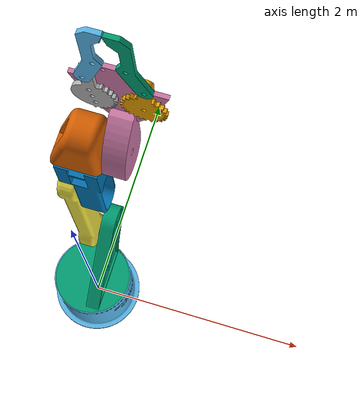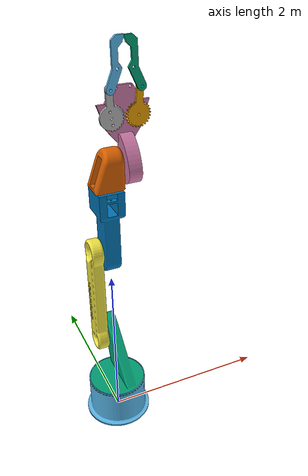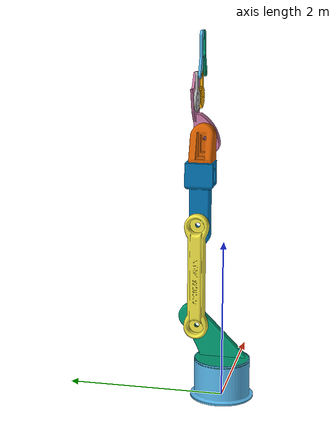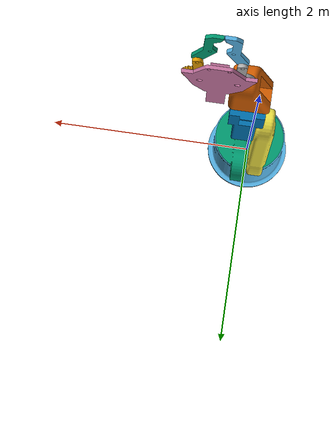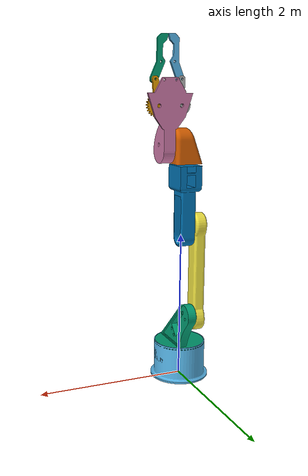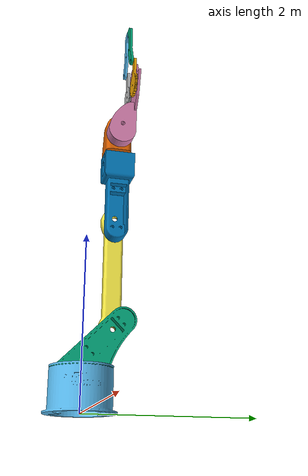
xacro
<?xml version="1.0"?>
<robot xmlns:xacro="http://www.ros.org/wiki/xacro" name="arm_robot" >

    <xacro:include filename="$(find robot_description)/urdf/gazebo_arm.xacro"/>
    <xacro:include filename="$(find robot_description)/urdf/arm_ros2_controll.xacro"/>

    <xacro:macro name="def_inertia" params="mass">
        <inertial>
            <mass value="${mass}"/>
            <inertia ixx="1.0" ixy="0.0" ixz="0.0"
                      iyy="1.0" iyz="0.0"
                      izz="1.0"/>
        </inertial>
    </xacro:macro>

    <xacro:macro name="def_transmission" params="number">
        <transmission name="transmission_${number}">
            <plugin>transmissio_interface/SimpleTransmission</plugin>
            <actuator name="motor_${number}" role="actuator1"/>
            <joint name="joint_${number}" role="joint1">
                <mechanical_reduction>1.0</mechanical_reduction>
            </joint>

        </transmission>
    </xacro:macro>

    <link name="world"/>

    <link name="base_link">
        <xacro:def_inertia mass="1.0"/>
        <visual>
            <origin xyz="0 0 0" rpy="1.5707 0 0"/>
            <geometry>
               <mesh filename="package://robot_description/meshes/Base.stl" scale="0.01 0.01 0.01"/>
            </geometry>
        </visual>
        <collision>
            <origin xyz="0 0 0" rpy="1.5707 0 0"/>
            <geometry>
               <mesh filename="package://robot_description/meshes/Base.stl" scale="0.01 0.01 0.01"/>
            </geometry>
        </collision>
    </link>

    <joint name="base_joint" type="fixed">
        <parent link="world"/>
        <child link="base_link"/>
        <origin xyz="0 0 0" rpy="0 0 0"/>
    </joint>

    <link name="base_plate_link">
        <xacro:def_inertia mass="0.5"/>
        <visual>
            <origin xyz="0 0 0" rpy="1.5707 0 0"/>
            <geometry>
               <mesh filename="package://robot_description/meshes/Cover.stl" scale="0.01 0.01 0.01"/>
            </geometry>
        </visual>
        <collision>
            <origin xyz="0 0 0" rpy="1.5707 0 0"/>
            <geometry>
               <mesh filename="package://robot_description/meshes/Cover.stl" scale="0.01 0.01 0.01"/>
            </geometry>
        </collision>
    </link>

    <joint name="joint_1" type="revolute">
        <parent link="base_link"/>
        <child link="base_plate_link"/>
        <axis xyz="0 0 1"/>
        <origin xyz="0 0 0.45" rpy="0 0 0"/>
        <limit lower="-1.5707" upper="1.5707" effort="30.0" velocity="10.0"/>
    </joint>

    <link name="link_1">
        <xacro:def_inertia mass="0.5"/>
        <visual>
            <origin xyz="-0.05 0.11 0.16" rpy="0 1.5707 1.5707"/>
            <geometry>
               <mesh filename="package://robot_description/meshes/Link_1.stl" scale="0.01 0.01 0.01"/>
            </geometry>
        </visual>
        <collision>
            <origin xyz="-0.05 0.11 0.16" rpy="0 1.5707 1.5707"/>
            <geometry>
               <mesh filename="package://robot_description/meshes/Link_1.stl" scale="0.01 0.01 0.01"/>
            </geometry>
        </collision>
    </link>

    <joint name="joint_2" type="revolute">
        <parent link="base_plate_link"/>
        <child link="link_1"/>
        <axis xyz="1 0 0"/>
        <origin xyz="-0.1 0.32 0.45" rpy="0 0 0"/>
        <limit lower="-1.5707" upper="1.5707" effort="30.0" velocity="10.0"/>
    </joint>

    <link name="link_2">
        <xacro:def_inertia mass="0.2"/>
        <visual>
            <origin xyz="0.06 0.124 -0.158" rpy="-1.5707 1.5707 -1.5707"/>
            <geometry>
               <mesh filename="package://robot_description/meshes/Link_2.stl" scale="0.01 0.01 0.01"/>
            </geometry>
        </visual>
        <collision>
            <origin xyz="0.06 0.124 -0.158" rpy="-1.5707 1.5707 -1.5707"/>
            <geometry>
               <mesh filename="package://robot_description/meshes/Link_2.stl" scale="0.01 0.01 0.01"/>
            </geometry>
        </collision>
    </link>

    <joint name="joint_3" type="revolute">
        <parent link="link_1"/>
        <child link="link_2"/>
        <axis xyz="1 0 0"/>
        <origin xyz="0.05 0 1.31" rpy="0 0 0"/>
        <limit lower="-1.5707" upper="1.5707" effort="30.0" velocity="10.0"/>
    </joint>

    <link name="link_3">
        <xacro:def_inertia mass="0.2"/>
        <visual>
            <origin xyz="0.18 0.07 0.19" rpy="-1.5707 1.5707 0"/>
            <geometry>
               <mesh filename="package://robot_description/meshes/Link_3.stl" scale="0.01 0.01 0.01"/>
            </geometry>
        </visual>
        <collision>
                <origin xyz="0.18 0.07 0.19" rpy="-1.5707 1.5707 0"/>
                <geometry>
                   <mesh filename="package://robot_description/meshes/Link_3.stl" scale="0.01 0.01 0.01"/>
                </geometry>
        </collision>
    </link>

    <joint name="joint_4" type="revolute">
        <parent link="link_2"/>
        <child link="link_3"/>
        <axis xyz="0 0 1"/>
        <origin xyz="0.155 -0.09 0.75" rpy="0 0 0"/>
        <limit lower="-1.5707" upper="1.5707" effort="30.0" velocity="10.0"/>
    </joint>

    <link name="link_4">
        <xacro:def_inertia mass="0.2"/>
        <visual>
            <origin xyz="0.17 0.13 0.5" rpy="0 0 0"/>
            <geometry>
               <mesh filename="package://robot_description/meshes/Link_4.stl" scale="0.01 0.01 0.01"/>
            </geometry>
        </visual>
        <collision>
            <origin xyz="0.17 0.13 0.5" rpy="0 0 0"/>
            <geometry>
               <mesh filename="package://robot_description/meshes/Link_4.stl" scale="0.01 0.01 0.01"/>
            </geometry>
        </collision>
    </link>

    <joint name="joint_5" type="revolute">
        <parent link="link_3"/>
        <child link="link_4"/>
        <axis xyz="1 0 0"/>
        <origin xyz="0.12 0.065 0.29" rpy="0 0 0"/>
        <limit lower="-1.5707" upper="1.5707" effort="30.0" velocity="10.0"/>
    </joint>

    <link name="link_5">
        <xacro:def_inertia mass="0.2"/>
        <visual>
            <origin xyz="0 0 0" rpy="0 -1.74533 0"/>
            <geometry>
               <mesh filename="package://robot_description/meshes/Grip_1.stl" scale="0.01 0.01 0.01"/>
            </geometry>
        </visual>
        <collision>
            <origin xyz="0 0 0" rpy="0 -1.74533 0"/>
            <geometry>
               <mesh filename="package://robot_description/meshes/Grip_1.stl" scale="0.01 0.01 0.01"/>
            </geometry>
        </collision>
    </link>

    <joint name="joint_6" type="revolute">
        <parent link="link_4"/>
        <child link="link_5"/>
        <axis xyz="0 1 0"/>
        <origin xyz="0.01 0.09 0.48" rpy="0 0 0"/>
        <limit lower="-1.5707" upper="0.0" effort="30.0" velocity="10.0"/>
    </joint>

    <link name="link_6">
        <xacro:def_inertia mass="0.2"/>
        <visual>
            <origin xyz="0 0 0" rpy="0 -1.48353 0"/>
            <geometry>
               <mesh filename="package://robot_description/meshes/Grip_2.stl" scale="0.01 0.01 0.01"/>
            </geometry>
        </visual>
        <collision>
            <origin xyz="0 0 0" rpy="0 -1.48353 0"/>
            <geometry>
               <mesh filename="package://robot_description/meshes/Grip_2.stl" scale="0.01 0.01 0.01"/>
            </geometry>
        </collision>
    </link>

    <joint name="joint_7" type="revolute">
        <parent link="link_4"/>
        <child link="link_6"/>
        <axis xyz="0 1 0"/>
        <origin xyz="0.32 0.09 0.48" rpy="0 0 0"/>
        <mimic joint="joint_6" multiplier="-1"/>
        <limit lower="0.0" upper="1.5707" effort="30.0" velocity="10.0"/>
    </joint>

    <link name="link_7">
        <xacro:def_inertia mass="0.05"/>
        <visual>
            <origin xyz="0 -0.01 0" rpy="0 -1.95 -3.14159"/>
            <geometry>
               <mesh filename="package://robot_description/meshes/Grip_3.stl" scale="0.01 0.01 0.01"/>
            </geometry>
        </visual>
        <collision>
            <origin xyz="0 -0.01 0" rpy="0 -1.95 -3.14159"/>
            <geometry>
               <mesh filename="package://robot_description/meshes/Grip_3.stl" scale="0.01 0.01 0.01"/>
            </geometry>
        </collision>
    </link>

    <joint name="joint_8" type="fixed">
        <parent link="link_5"/>
        <child link="link_7"/>
        <origin xyz="-0.01 0 0.31" rpy="0 0 0"/>
    </joint>

    <link name="link_8">
        <xacro:def_inertia mass="0.05"/>
        <visual>
            <origin xyz="0 -0.04 0" rpy="0 -1.989 0"/>
            <geometry>
               <mesh filename="package://robot_description/meshes/Grip_3.stl" scale="0.01 0.01 0.01"/>
            </geometry>
        </visual>
        <collision>
            <origin xyz="0 -0.04 0" rpy="0 -1.989 0"/>
            <geometry>
               <mesh filename="package://robot_description/meshes/Grip_3.stl" scale="0.01 0.01 0.01"/>
            </geometry>
        </collision>
    </link>

    <joint name="joint_9" type="fixed">
        <parent link="link_6"/>
        <child link="link_8"/>
        <origin xyz="0.03 0 0.31" rpy="0 0 0"/>
    </joint>

    <xacro:def_transmission number="1"/>
    <xacro:def_transmission number="2"/>
    <xacro:def_transmission number="3"/>
    <xacro:def_transmission number="4"/>
    <xacro:def_transmission number="5"/>
    <xacro:def_transmission number="6"/>
    <xacro:def_transmission number="7"/>

</robot>
